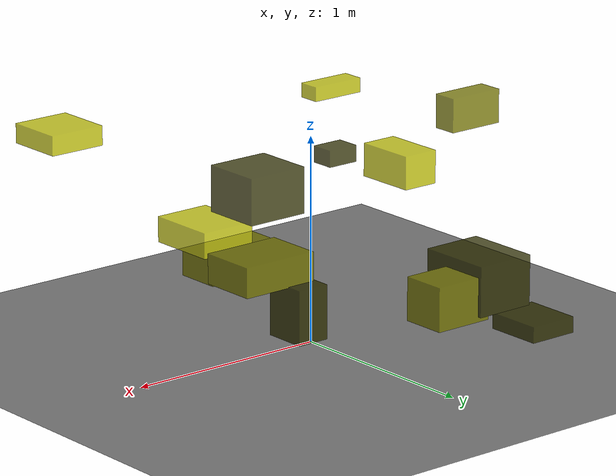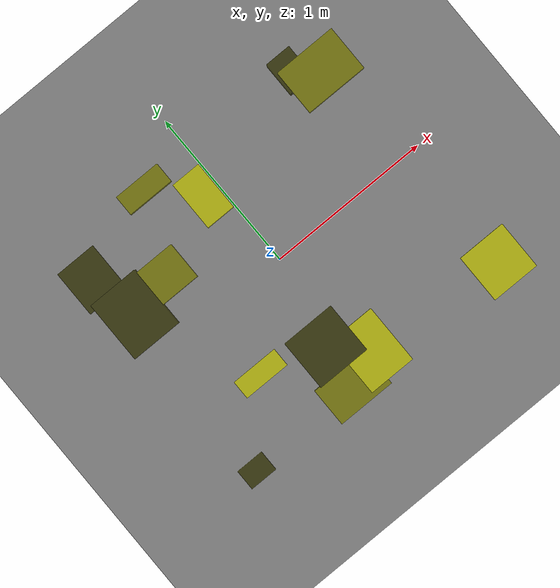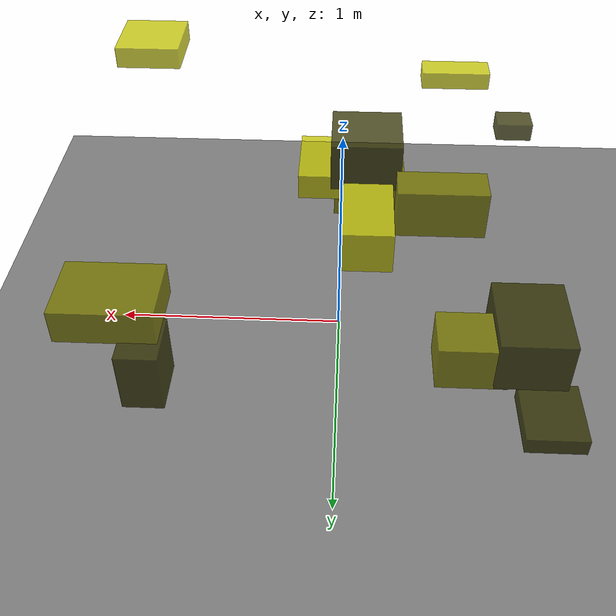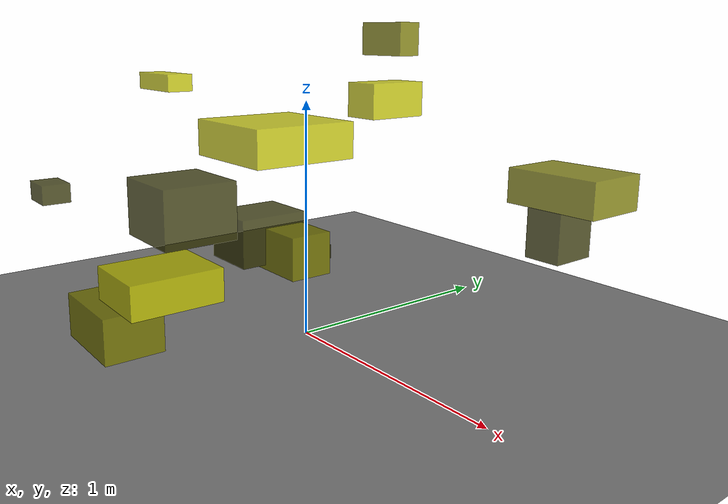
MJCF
<?xml version="1.0"?>
<mujoco model="obstacle_scene">
  <compiler angle="radian" coordinate="local"/>
  <option timestep="0.001" gravity="0 0 -9.81"/>

  <asset>
    <material name="obstacle_mat" rgba="0.8 0.8 0.0 0.8"/>
    <material name="ground_mat" rgba="0.5 0.5 0.5 1"/>
  </asset>

  <worldbody>
    <!-- Ground plane -->
    <geom name="ground" type="plane" size="3 3 0.1" material="ground_mat"/>

    <!-- Obstacles -->
    <body name="obstacle_0" pos="-0.820864 -0.799765 0.583335">
      <geom name="obs_0" type="box" size="0.082472 0.060985 0.042201" rgba="0.2 0.2 0.0 0.8"/>
    </body>
    <body name="obstacle_1" pos="-0.135285 -0.798925 0.195228">
      <geom name="obs_1" type="box" size="0.177416 0.116735 0.087612" rgba="0.5 0.5 0.0 0.8"/>
    </body>
    <body name="obstacle_2" pos="0.070079 -0.702535 0.383161">
      <geom name="obs_2" type="box" size="0.144052 0.178486 0.063688" rgba="0.8 0.8 0.0 0.8"/>
    </body>
    <body name="obstacle_3" pos="-0.876738 0.578856 0.058056">
      <geom name="obs_3" type="box" size="0.125368 0.142966 0.039323" rgba="0.2 0.2 0.0 0.8"/>
    </body>
    <body name="obstacle_4" pos="0.818397 0.639752 0.694571">
      <geom name="obs_4" type="box" size="0.187467 0.137294 0.069421" rgba="0.5 0.5 0.0 0.8"/>
    </body>
    <body name="obstacle_5" pos="-0.094571 0.514174 0.972785">
      <geom name="obs_5" type="box" size="0.087644 0.145739 0.077891" rgba="0.8 0.8 0.0 0.8"/>
    </body>
    <body name="obstacle_6" pos="-0.106051 -0.520993 0.604269">
      <geom name="obs_6" type="box" size="0.160788 0.152141 0.115382" rgba="0.2 0.2 0.0 0.8"/>
    </body>
    <body name="obstacle_7" pos="-0.561857 0.331505 0.182385">
      <geom name="obs_7" type="box" size="0.153175 0.114356 0.108654" rgba="0.5 0.5 0.0 0.8"/>
    </body>
    <body name="obstacle_8" pos="-0.457655 -0.401288 1.068902">
      <geom name="obs_8" type="box" size="0.136766 0.053856 0.034774" rgba="0.8 0.8 0.0 0.8"/>
    </body>
    <body name="obstacle_9" pos="0.696663 0.752125 0.503067">
      <geom name="obs_9" type="box" size="0.077607 0.102736 0.126685" rgba="0.2 0.2 0.0 0.8"/>
    </body>
    <body name="obstacle_10" pos="-0.308496 0.730997 1.239234">
      <geom name="obs_10" type="box" size="0.136675 0.058536 0.078778" rgba="0.5 0.5 0.0 0.8"/>
    </body>
    <body name="obstacle_11" pos="0.885440 -0.749461 1.007271">
      <geom name="obs_11" type="box" size="0.141561 0.142652 0.047171" rgba="0.8 0.8 0.0 0.8"/>
    </body>
    <body name="obstacle_12" pos="-0.804283 0.275085 0.223073">
      <geom name="obs_12" type="box" size="0.154104 0.189896 0.124620" rgba="0.2 0.2 0.0 0.8"/>
    </body>
  </worldbody>
</mujoco>
